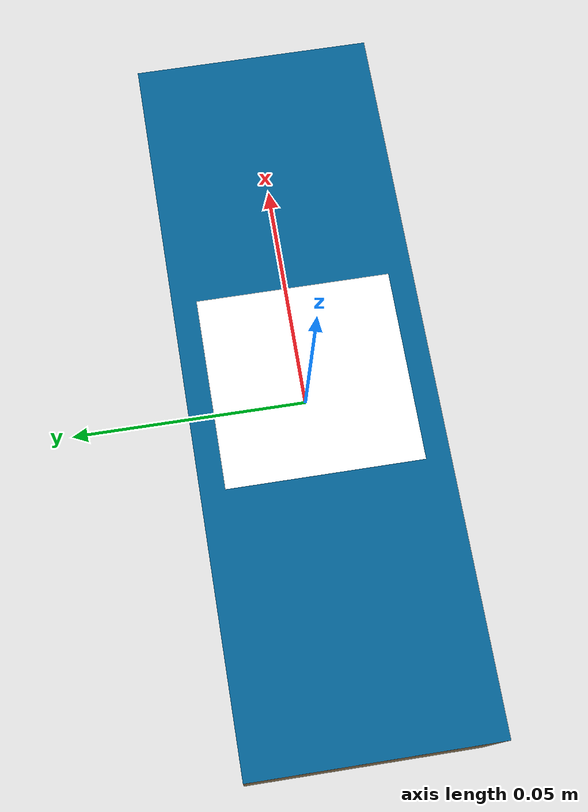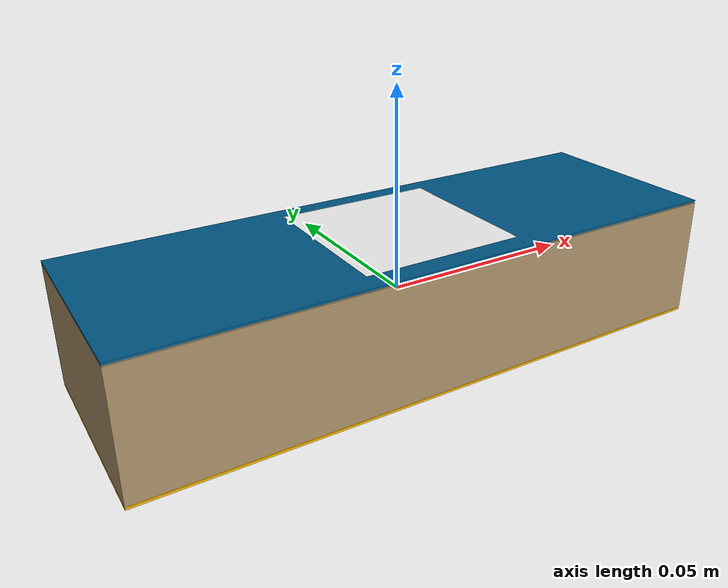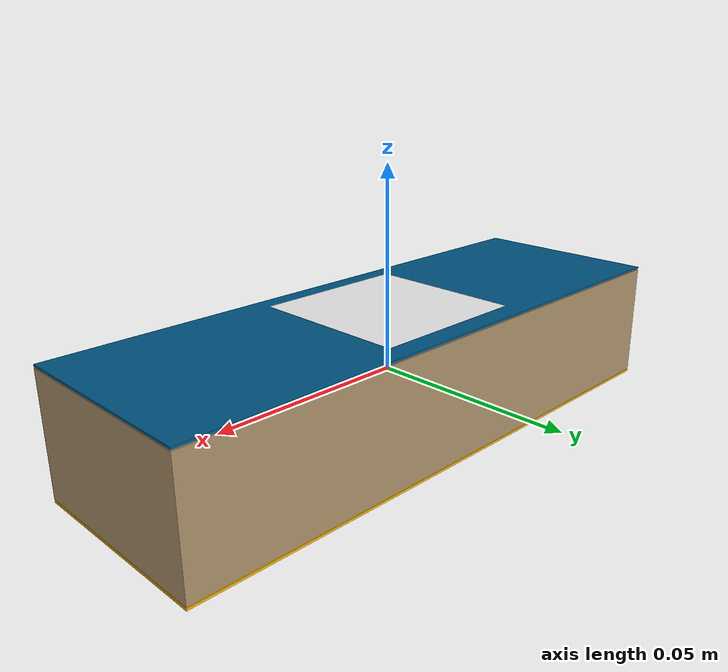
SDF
<?xml version="1.0" ?>
<sdf version="1.9">
  <model name="crate_nuts" canonical_link="body">
    <static>false</static>

    <link name="body">
      <!-- Inertial properties (m = 0.17 kg; a=0.15, b=0.05, c=0.03 m) -->
      <inertial>
        <mass>0.17</mass>
        <inertia>
          <!-- Ixx = 1/12 m (b^2 + c^2) -->
          <ixx>0.000048167</ixx>
          <!-- Iyy = 1/12 m (a^2 + c^2) -->
          <iyy>0.000331500</iyy>
          <!-- Izz = 1/12 m (a^2 + b^2) -->
          <izz>0.000354167</izz>
          <ixy>0</ixy>
          <ixz>0</ixz>
          <iyz>0</iyz>
        </inertia>
      </inertial>

      <!-- Collision -->
      <collision name="collision">
        <geometry>
          <box>
            <size>0.15 0.05 0.03</size>
          </box>
        </geometry>
        <surface>
          <friction>
            <ode>
              <mu>1.0</mu>
              <mu2>1.0</mu2>
            </ode>
          </friction>
          <contact>
            <ode>
              <kp>1e6</kp>
              <kd>1</kd>
              <max_vel>0.1</max_vel>
              <min_depth>0.001</min_depth>
            </ode>
          </contact>
          <bounce>
            <restitution_coefficient>0.0</restitution_coefficient>
            <threshold>1e6</threshold>
          </bounce>
        </surface>
      </collision>

      <!-- Visual 1: base bois -->
      <visual name="visual_wood">
        <geometry>
          <box>
            <size>0.15 0.05 0.03</size>
          </box>
        </geometry>
        <material>
          <ambient>0.65 0.55 0.40 1</ambient>
          <diffuse>0.65 0.55 0.40 1</diffuse>
          <specular>0.2 0.2 0.2 1</specular>
        </material>
      </visual>

      <!-- Visual 2: face +Z (dessus) peinte BLEUE -->
      <visual name="top_blue_xy">
        <!-- pose: x y z R P Y -->
        <pose>0 0 0.0155 0 0 0</pose>
        <geometry>
          <!-- plaque fine parallèle au plan XY -->
          <box>
            <size>0.15 0.05 0.0005</size>
          </box>
        </geometry>
        <material>
          <ambient>0.00 0.36 0.55 1</ambient>
          <diffuse>0.00 0.36 0.55 1</diffuse>
          <specular>0.2 0.2 0.2 1</specular>
        </material>
        <cast_shadows>false</cast_shadows>
      </visual>

      <!-- Visual 3: face -Z (dessous) peinte JAUNE cahque face fait 0.0005 donc on a plus 0.001 sur la hauteur des crates-->
      <visual name="bottom_yellow_xy">
        <pose>0 0 -0.0155 0 0 0</pose>
        <geometry>
          <box>
            <size>0.15 0.05 0.0005</size>
          </box>
        </geometry>
        <material>
          <ambient>0.97 0.71 0.00 1</ambient>
          <diffuse>0.97 0.71 0.00 1</diffuse>
          <specular>0.2 0.2 0.2 1</specular>
        </material>
        <cast_shadows>false</cast_shadows>
      </visual>

      <visual name="aruco_top">
        <pose>0 0 0.016 0 0 0</pose>
        <cast_shadows>false</cast_shadows>
        <geometry>
          <plane>
            <size>0.04 0.04</size>
            <normal>0 0 1</normal>
            <texture>
              <size>0.03 0.03</size>
            </texture>
          </plane>
        </geometry>
        <material>
          <diffuse>1 1 1 1</diffuse>
          <pbr>
            <metal>
              <albedo_map>file://models/crate/aruco_36.png</albedo_map>
            </metal>
          </pbr>
          <double_sided>true</double_sided>
        </material>
      </visual>

      <visual name="aruco_bottom">  <!-- faudrait que je rajoute le vynile, does it really matter? -->
        <pose>0 0 -0.016 0 0 0</pose>
        <cast_shadows>false</cast_shadows>
        <geometry>
          <plane>
            <size>0.04 0.04</size>
            <normal>0 0 1</normal>
            <texture>
              <size>0.03 0.03</size>
            </texture>
          </plane>
        </geometry>
        <material>
          <diffuse>1 1 1 1</diffuse>
          <pbr>
            <metal>
              <albedo_map>file://models/crate/aruco_47.png</albedo_map>
            </metal>
          </pbr>
          <double_sided>true</double_sided>
        </material>
      </visual>

    </link>
  </model>
</sdf>
